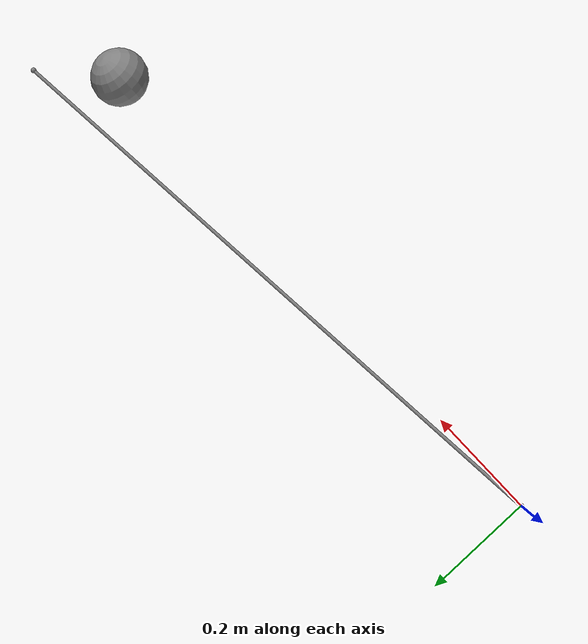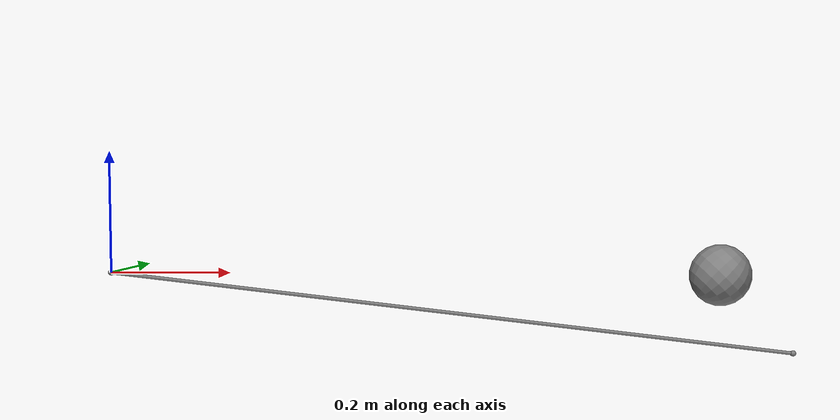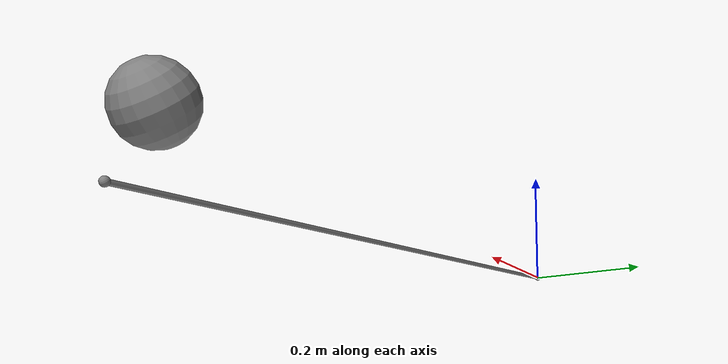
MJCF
<mujoco>
  <worldbody>
    <site name="anchor" pos="0 0 0"/>
    <body name="floating" pos="1 0 0" euler="0 45 0">
      <freejoint name="free"/>
      <geom type="sphere" size="0.05"/>
      <site name="attach" pos="0.2 0.1 0"/>
    </body>
  </worldbody>
  <tendon>
    <spatial name="t_free" stiffness="100">
      <site site="anchor"/>
      <site site="attach"/>
    </spatial>
  </tendon>
</mujoco>
